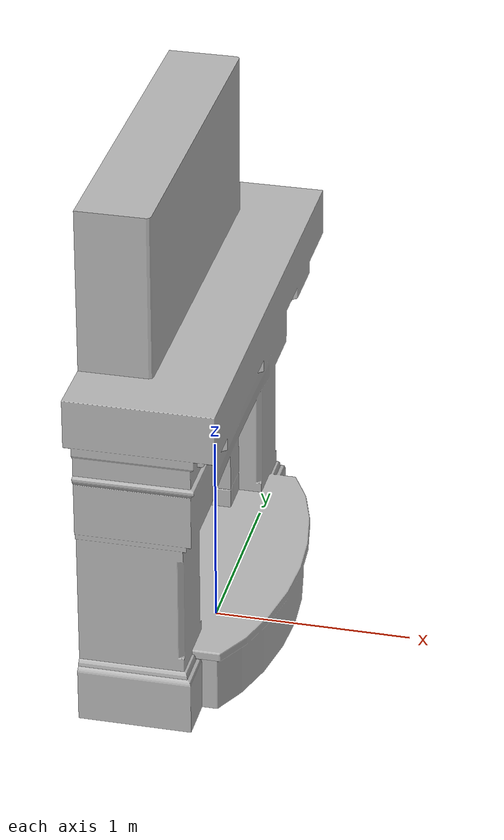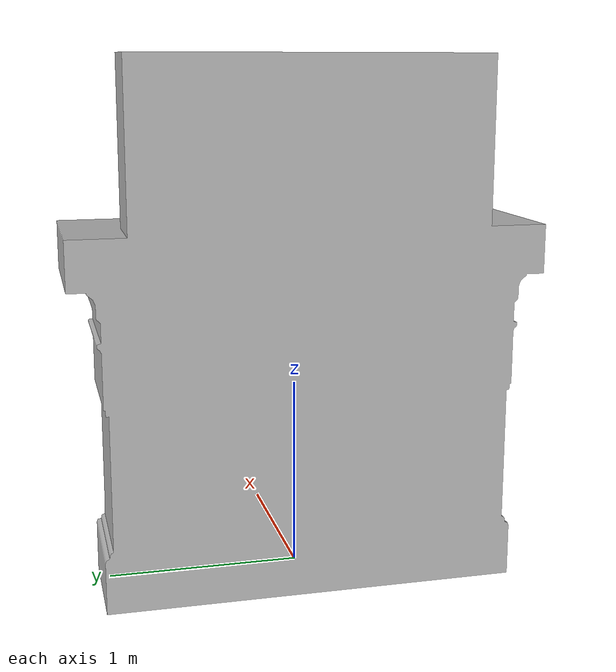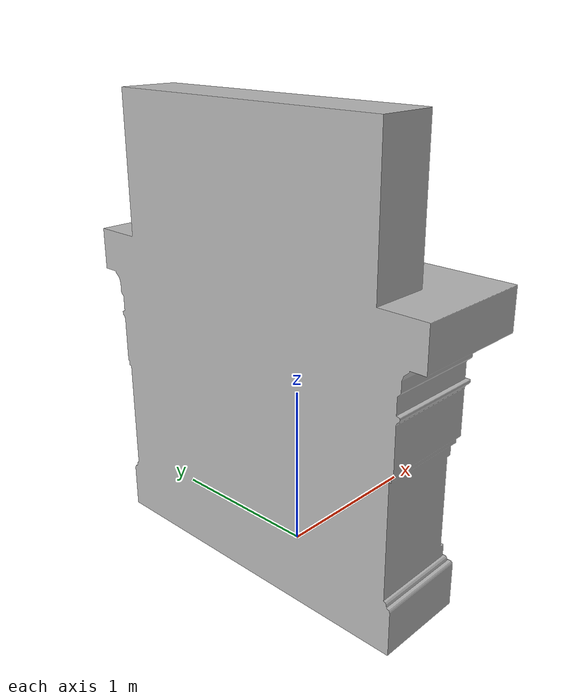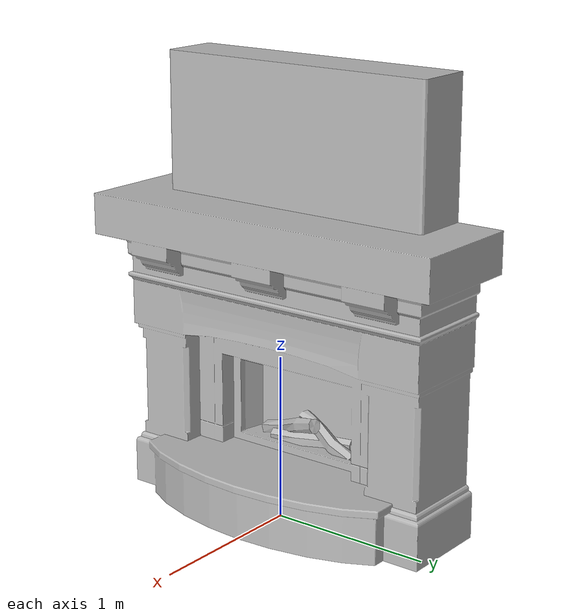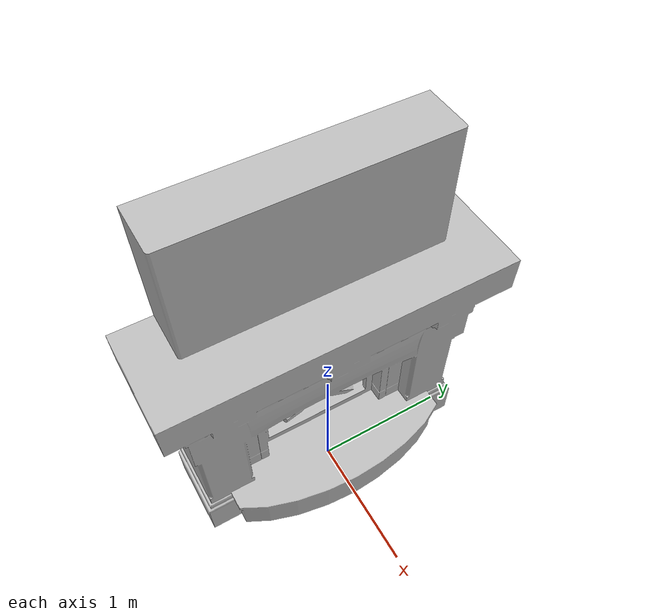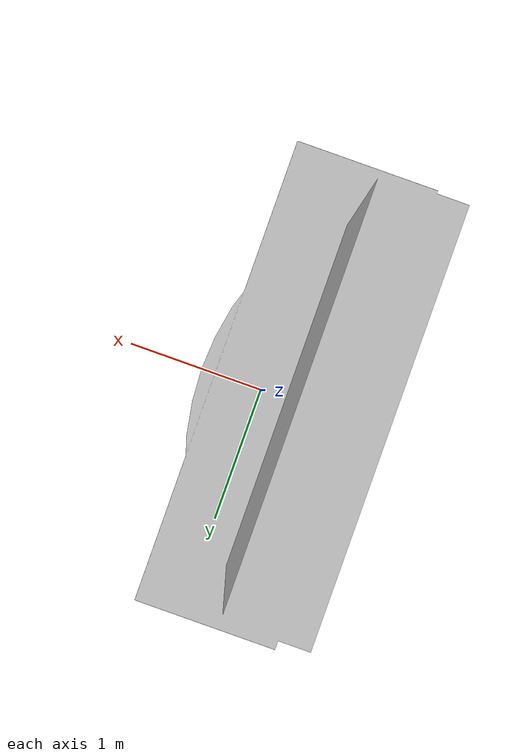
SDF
<?xml version='1.0'?>
<sdf version='1.4'>
  <model name='s__1974'>
    <pose>0 0 0 0 0 0</pose>
    <static>true</static>
    <link name='link'>
      <collision name='collision'>
        <pose>0 0 0 0 0 0</pose>
        <geometry>
          <box>
            <size>0.880001 2.38 2</size>
          </box>
        </geometry>
      </collision>
      <visual name='visual'>
        <pose>0 0 0 0 0 0</pose>
        <geometry>
          <mesh><uri>model://s__1974/s__1974.dae</uri></mesh>
        </geometry>
      </visual>
    </link>
  </model>
</sdf>
